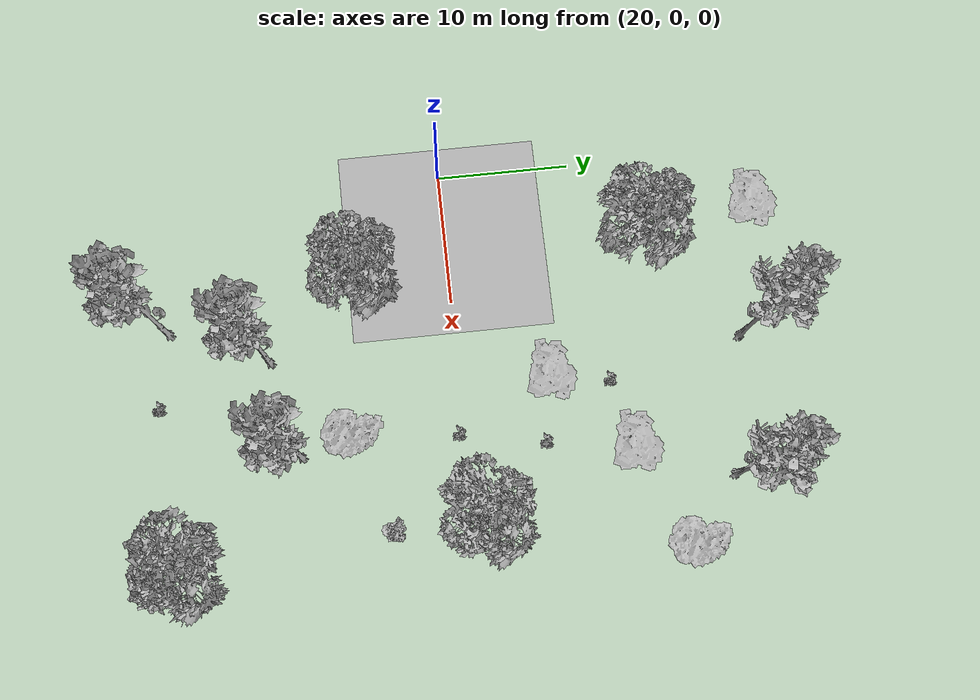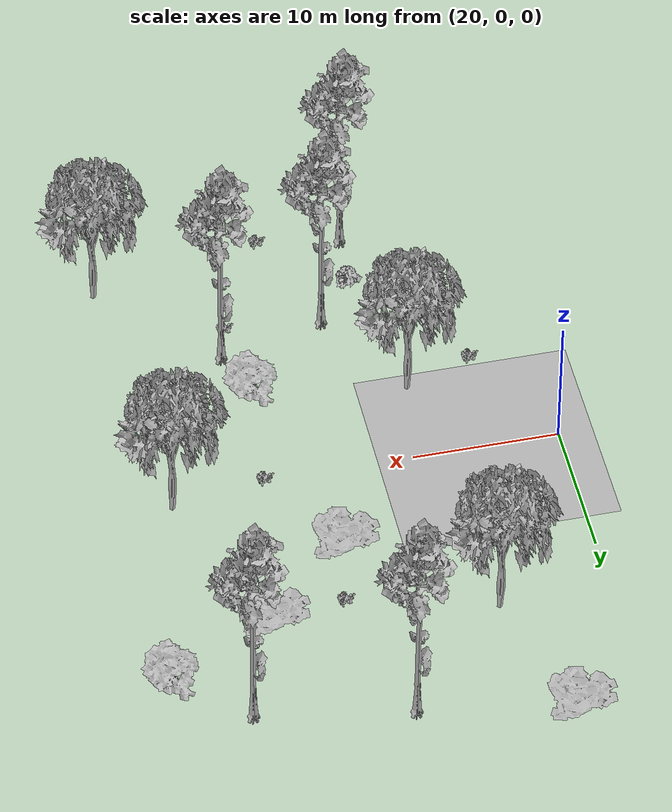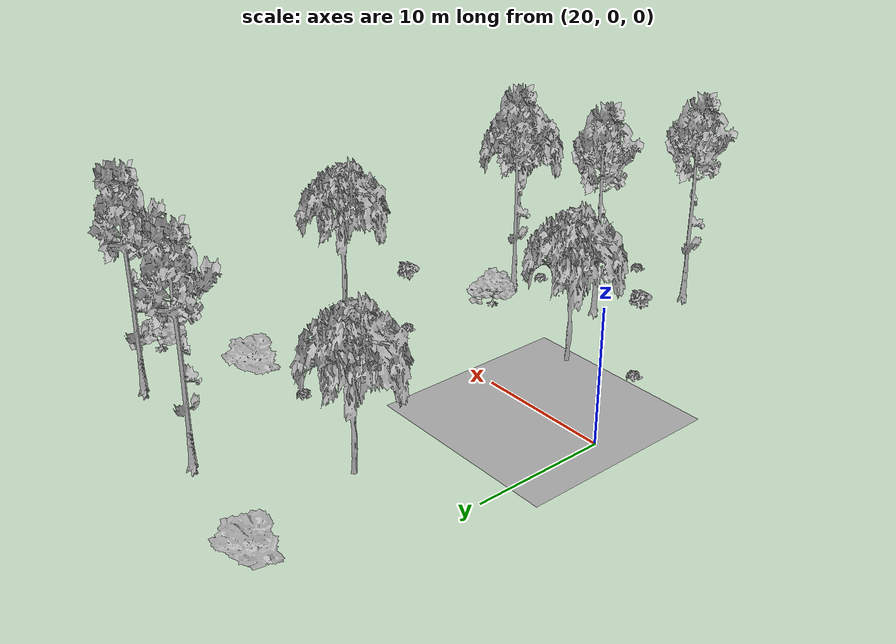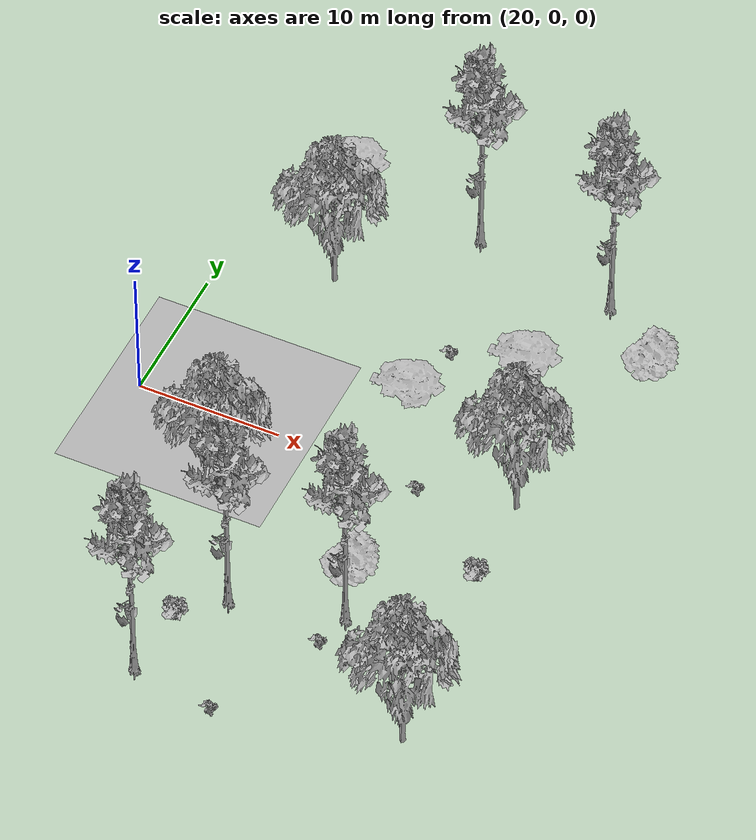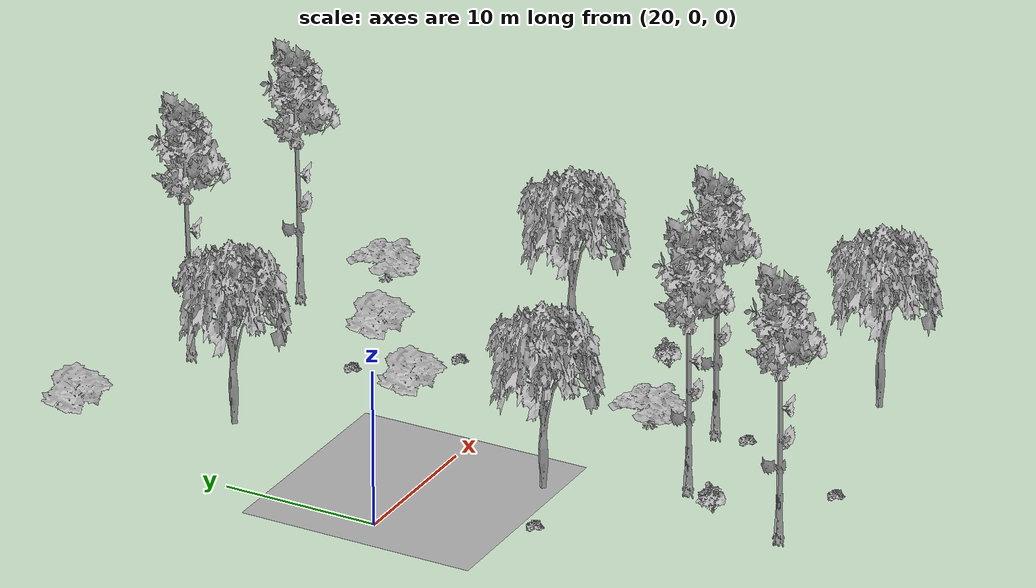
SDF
<sdf version="1.7">
 <world name="default">
  <model name="ground_plane">
   <static>1</static>
   <link name="link">
    <collision name="collision">
     <pose>25.0 0 0 0 -0 0</pose>
     <geometry><plane><normal>0 0 1</normal><size>50 50</size></plane></geometry>
     <surface><contact><ode><min_depth>0.01</min_depth><max_vel>0</max_vel></ode></contact></surface>
    </collision>
    <visual name="grass">
     <pose>25.0 0 0 0 -0 0</pose>
     <cast_shadows>0</cast_shadows>
     <geometry>
      <mesh>
       <scale>0.2731578947368421 0.2802702702702703 0.1</scale>
       <uri>file://grass_plane/meshes/grass_plane.dae</uri>
      </mesh>
     </geometry>
    </visual>
   </link>
  </model>
  <model name="Tree 0">
   <static>1</static>
   <pose>44.9702716289744 19.44573450429428 0 1.57079 -0 0</pose>
   <link name="link">
    <collision name="collision">
     <geometry><mesh><scale>3.5 5 3.5</scale><uri>model://tree_9/meshes/tree_9.obj</uri></mesh></geometry>
    </collision>
    <visual name="visual">
     <geometry><mesh><scale>3.5 5 3.5</scale><uri>model://tree_9/meshes/tree_9.obj</uri></mesh></geometry>
    </visual>
   </link>
  </model>
  <model name="Tree 2">
   <static>1</static>
   <pose>33.2202716289744 -13.887598829039048 0 1.57079 -0 0</pose>
   <link name="link">
    <collision name="collision">
     <geometry><mesh><scale>3.5 5 3.5</scale><uri>model://tree_9/meshes/tree_9.obj</uri></mesh></geometry>
    </collision>
    <visual name="visual">
     <geometry><mesh><scale>3.5 5 3.5</scale><uri>model://tree_9/meshes/tree_9.obj</uri></mesh></geometry>
    </visual>
   </link>
  </model>
  <model name="Tree 4">
   <static>1</static>
   <pose>39.0952716289744 -8.332043273483492 0 1.57079 -0 0</pose>
   <link name="link">
    <collision name="collision">
     <geometry><mesh><scale>4 2.5 4</scale><uri>model://tree_1/meshes/tree_1.obj</uri></mesh></geometry>
    </collision>
    <visual name="visual">
     <geometry><mesh><scale>4 2.5 4</scale><uri>model://tree_1/meshes/tree_1.obj</uri></mesh></geometry>
    </visual>
   </link>
  </model>
  <model name="Tree 6">
   <static>1</static>
   <pose>27.345271628974402 13.890178948738722 0 1.57079 -0 0</pose>
   <link name="link">
    <collision name="collision">
     <geometry><mesh><scale>3.5 5 3.5</scale><uri>model://tree_2/meshes/tree_2.obj</uri></mesh></geometry>
    </collision>
    <visual name="visual">
     <geometry><mesh><scale>3.5 5 3.5</scale><uri>model://tree_2/meshes/tree_2.obj</uri></mesh></geometry>
    </visual>
   </link>
  </model>
  <model name="Tree 8">
   <static>1</static>
   <pose>47.9077716289744 -19.4431543845946 0 1.57079 -0 0</pose>
   <link name="link">
    <collision name="collision">
     <geometry><mesh><scale>3.5 5 3.5</scale><uri>model://tree_2/meshes/tree_2.obj</uri></mesh></geometry>
    </collision>
    <visual name="visual">
     <geometry><mesh><scale>3.5 5 3.5</scale><uri>model://tree_2/meshes/tree_2.obj</uri></mesh></geometry>
    </visual>
   </link>
  </model>
  <model name="Tree 9">
   <static>1</static>
   <pose>24.407771628974402 23.14943820799799 0 1.57079 -0 0</pose>
   <link name="link">
    <collision name="collision">
     <geometry><mesh><scale>3 2 3</scale><uri>model://tree_3/meshes/tree_3.obj</uri></mesh></geometry>
    </collision>
    <visual name="visual">
     <geometry><mesh><scale>3 2 3</scale><uri>model://tree_3/meshes/tree_3.obj</uri></mesh></geometry>
    </visual>
   </link>
  </model>
  <model name="Tree 10">
   <static>1</static>
   <pose>36.1577716289744 6.482771541331324 0 1.57079 -0 0</pose>
   <link name="link">
    <collision name="collision">
     <geometry><mesh><scale>3 2 3</scale><uri>model://tree_3/meshes/tree_3.obj</uri></mesh></geometry>
    </collision>
    <visual name="visual">
     <geometry><mesh><scale>3 2 3</scale><uri>model://tree_3/meshes/tree_3.obj</uri></mesh></geometry>
    </visual>
   </link>
  </model>
  <model name="Tree 12">
   <static>1</static>
   <pose>42.0327716289744 12.038327096886874 0 1.57079 -0 0</pose>
   <link name="link">
    <collision name="collision">
     <geometry><mesh><scale>3 2 3</scale><uri>model://tree_3/meshes/tree_3.obj</uri></mesh></geometry>
    </collision>
    <visual name="visual">
     <geometry><mesh><scale>3 2 3</scale><uri>model://tree_3/meshes/tree_3.obj</uri></mesh></geometry>
    </visual>
   </link>
  </model>
  <model name="Tree 14">
   <static>1</static>
   <pose>30.282771628974402 -21.29500623644645 0 1.57079 -0 0</pose>
   <link name="link">
    <collision name="collision">
     <geometry><mesh><scale>3.5 5 3.5</scale><uri>model://tree_9/meshes/tree_9.obj</uri></mesh></geometry>
    </collision>
    <visual name="visual">
     <geometry><mesh><scale>3.5 5 3.5</scale><uri>model://tree_9/meshes/tree_9.obj</uri></mesh></geometry>
    </visual>
   </link>
  </model>
  <model name="Tree 16">
   <static>1</static>
   <pose>46.4390216289744 0.9272159857757636 0 1.57079 -0 0</pose>
   <link name="link">
    <collision name="collision">
     <geometry><mesh><scale>3.5 5 3.5</scale><uri>model://tree_2/meshes/tree_2.obj</uri></mesh></geometry>
    </collision>
    <visual name="visual">
     <geometry><mesh><scale>3.5 5 3.5</scale><uri>model://tree_2/meshes/tree_2.obj</uri></mesh></geometry>
    </visual>
   </link>
  </model>
  <model name="Tree 18">
   <static>1</static>
   <pose>34.6890216289744 21.297586356146134 0 1.57079 -0 0</pose>
   <link name="link">
    <collision name="collision">
     <geometry><mesh><scale>3.5 5 3.5</scale><uri>model://tree_9/meshes/tree_9.obj</uri></mesh></geometry>
    </collision>
    <visual name="visual">
     <geometry><mesh><scale>3.5 5 3.5</scale><uri>model://tree_9/meshes/tree_9.obj</uri></mesh></geometry>
    </visual>
   </link>
  </model>
  <model name="Tree 20">
   <static>1</static>
   <pose>40.5640216289744 -12.035746977187195 0 1.57079 -0 0</pose>
   <link name="link">
    <collision name="collision">
     <geometry><mesh><scale>3.5 5 3.5</scale><uri>model://tree_9/meshes/tree_9.obj</uri></mesh></geometry>
    </collision>
    <visual name="visual">
     <geometry><mesh><scale>3.5 5 3.5</scale><uri>model://tree_9/meshes/tree_9.obj</uri></mesh></geometry>
    </visual>
   </link>
  </model>
  <model name="Tree 22">
   <static>1</static>
   <pose>28.814021628974402 -6.480191421631641 0 1.57079 -0 0</pose>
   <link name="link">
    <collision name="collision">
     <geometry><mesh><scale>3.5 5 3.5</scale><uri>model://tree_2/meshes/tree_2.obj</uri></mesh></geometry>
    </collision>
    <visual name="visual">
     <geometry><mesh><scale>3.5 5 3.5</scale><uri>model://tree_2/meshes/tree_2.obj</uri></mesh></geometry>
    </visual>
   </link>
  </model>
  <model name="Tree 24">
   <static>1</static>
   <pose>49.3765216289744 15.74203080059057 0 1.57079 -0 0</pose>
   <link name="link">
    <collision name="collision">
     <geometry><mesh><scale>4 2.5 4</scale><uri>model://tree_1/meshes/tree_1.obj</uri></mesh></geometry>
    </collision>
    <visual name="visual">
     <geometry><mesh><scale>4 2.5 4</scale><uri>model://tree_1/meshes/tree_1.obj</uri></mesh></geometry>
    </visual>
   </link>
  </model>
  <model name="Bush 1">
   <static>1</static>
   <pose>30.76973838028453 -16.782217717917586 0 1.57079 -0 0</pose>
   <link name="link">
    <collision name="collision">
     <geometry><mesh><scale>2 2 2</scale><uri>model://bush_1/meshes/bush_1.obj</uri></mesh></geometry>
     <surface><contact><collide_without_contact>false</collide_without_contact></contact></surface>
    </collision>
    <visual name="visual">
     <geometry><mesh><scale>2 2 2</scale><uri>model://bush_1/meshes/bush_1.obj</uri></mesh></geometry>
    </visual>
   </link>
  </model>
  <model name="Bush 2">
   <static>1</static>
   <pose>39.83913348830676 -14.537898500393792 0 1.57079 -0 0</pose>
   <link name="link">
    <collision name="collision">
     <geometry><mesh><scale>2 2 2</scale><uri>model://bush_2/meshes/bush_2.obj</uri></mesh></geometry>
     <surface><contact><collide_without_contact>false</collide_without_contact></contact></surface>
    </collision>
    <visual name="visual">
     <geometry><mesh><scale>2 2 2</scale><uri>model://bush_2/meshes/bush_2.obj</uri></mesh></geometry>
    </visual>
   </link>
  </model>
  <model name="Bush 3">
   <static>1</static>
   <pose>37.07640343818051 11.181312840343608 0 1.57079 -0 0</pose>
   <link name="link">
    <collision name="collision">
     <geometry><mesh><scale>2 2 2</scale><uri>model://bush_2/meshes/bush_2.obj</uri></mesh></geometry>
     <surface><contact><collide_without_contact>false</collide_without_contact></contact></surface>
    </collision>
    <visual name="visual">
     <geometry><mesh><scale>2 2 2</scale><uri>model://bush_2/meshes/bush_2.obj</uri></mesh></geometry>
    </visual>
   </link>
  </model>
  <model name="Bush 4">
   <static>1</static>
   <pose>24.11000636446182 -8.453196181186566 0 1.57079 -0 0</pose>
   <link name="link">
    <collision name="collision">
     <geometry><mesh><scale>2 2 2</scale><uri>model://bush_2/meshes/bush_2.obj</uri></mesh></geometry>
     <surface><contact><collide_without_contact>false</collide_without_contact></contact></surface>
    </collision>
    <visual name="visual">
     <geometry><mesh><scale>2 2 2</scale><uri>model://bush_2/meshes/bush_2.obj</uri></mesh></geometry>
    </visual>
   </link>
  </model>
  <model name="Bush 5">
   <static>1</static>
   <pose>40.00828002407419 -0.38412094668845853 0 1.57079 -0 0</pose>
   <link name="link">
    <collision name="collision">
     <geometry><mesh><scale>2 2 2</scale><uri>model://bush_2/meshes/bush_2.obj</uri></mesh></geometry>
     <surface><contact><collide_without_contact>false</collide_without_contact></contact></surface>
    </collision>
    <visual name="visual">
     <geometry><mesh><scale>2 2 2</scale><uri>model://bush_2/meshes/bush_2.obj</uri></mesh></geometry>
    </visual>
   </link>
  </model>
  <model name="Bush 7">
   <static>1</static>
   <pose>41.230623719495675 5.941453996588127 0 1.57079 -0 0</pose>
   <link name="link">
    <collision name="collision">
     <geometry><mesh><scale>2 2 2</scale><uri>model://bush_2/meshes/bush_2.obj</uri></mesh></geometry>
     <surface><contact><collide_without_contact>false</collide_without_contact></contact></surface>
    </collision>
    <visual name="visual">
     <geometry><mesh><scale>2 2 2</scale><uri>model://bush_2/meshes/bush_2.obj</uri></mesh></geometry>
    </visual>
   </link>
  </model>
  <model name="Bush 13">
   <static>1</static>
   <pose>35.97239018872574 -22.263141701397075 0 1.57079 -0 0</pose>
   <link name="link">
    <collision name="collision">
     <geometry><mesh><scale>2 2 2</scale><uri>model://bush_2/meshes/bush_2.obj</uri></mesh></geometry>
     <surface><contact><collide_without_contact>false</collide_without_contact></contact></surface>
    </collision>
    <visual name="visual">
     <geometry><mesh><scale>2 2 2</scale><uri>model://bush_2/meshes/bush_2.obj</uri></mesh></geometry>
    </visual>
   </link>
  </model>
  <model name="Bush 14">
   <static>1</static>
   <pose>46.647116739620884 -5.806229340474641 0 1.57079 -0 0</pose>
   <link name="link">
    <collision name="collision">
     <geometry><mesh><scale>2 2 2</scale><uri>model://bush_1/meshes/bush_1.obj</uri></mesh></geometry>
     <surface><contact><collide_without_contact>false</collide_without_contact></contact></surface>
    </collision>
    <visual name="visual">
     <geometry><mesh><scale>2 2 2</scale><uri>model://bush_1/meshes/bush_1.obj</uri></mesh></geometry>
    </visual>
   </link>
  </model>
 </world>
</sdf>
